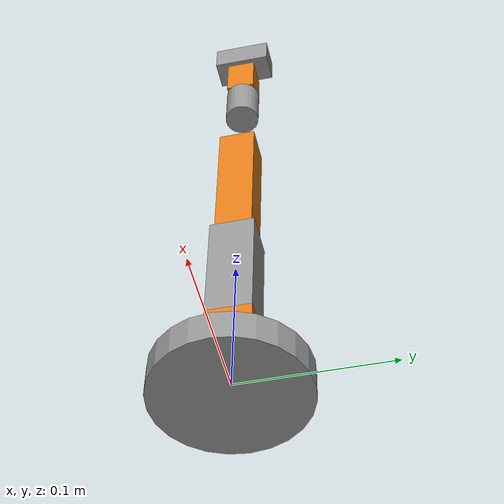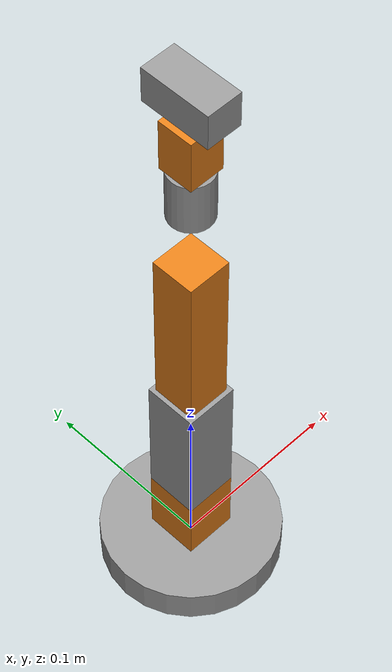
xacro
<?xml version="1.0"?>
<robot name="six_axis_arm" xmlns:xacro="http://www.ros.org/wiki/xacro">

  <material name="grey"><color rgba="0.6 0.6 0.6 1"/></material>
  <material name="orange"><color rgba="0.9 0.5 0.1 1"/></material>

  <link name="base_link">
    <visual>
      <geometry><cylinder radius="0.05" length="0.02"/></geometry>
      <material name="grey"/>
    </visual>
    <collision><geometry><cylinder radius="0.05" length="0.02"/></geometry></collision>
  </link>

  <!-- joint_1: base rotate (MG995, CH3) -->
  <joint name="joint_1" type="revolute">
    <parent link="base_link"/>
    <child link="link_1"/>
    <origin xyz="0 0 0.02" rpy="0 0 0"/>
    <axis xyz="0 0 1"/>
    <limit lower="-1.57" upper="1.57" effort="10" velocity="1.5"/>
  </joint>
  <link name="link_1">
    <visual><geometry><box size="0.03 0.03 0.06"/></geometry><material name="orange"/></visual>
    <collision><geometry><box size="0.03 0.03 0.06"/></geometry></collision>
  </link>

  <!-- joint_2: shoulder (MG995, CH4) -->
  <joint name="joint_2" type="revolute">
    <parent link="link_1"/>
    <child link="link_2"/>
    <origin xyz="0 0 0.06" rpy="0 0 0"/>
    <axis xyz="0 1 0"/>
    <limit lower="-1.57" upper="1.57" effort="10" velocity="1.5"/>
  </joint>
  <link name="link_2">
    <!-- TODO: replace 0.10 with your measured upper-arm length -->
    <visual><geometry><box size="0.03 0.03 0.10"/></geometry><material name="grey"/></visual>
    <collision><geometry><box size="0.03 0.03 0.10"/></geometry></collision>
  </link>

  <!-- joint_3: elbow (MG995, CH5) -->
  <joint name="joint_3" type="revolute">
    <parent link="link_2"/>
    <child link="link_3"/>
    <origin xyz="0 0 0.10" rpy="0 0 0"/>
    <axis xyz="0 1 0"/>
    <limit lower="-1.57" upper="1.57" effort="10" velocity="1.5"/>
  </joint>
  <link name="link_3">
    <!-- TODO: replace 0.10 with your measured forearm length -->
    <visual><geometry><box size="0.025 0.025 0.10"/></geometry><material name="orange"/></visual>
    <collision><geometry><box size="0.025 0.025 0.10"/></geometry></collision>
  </link>

  <!-- joint_4: wrist roll (SG90, CH0) -->
  <joint name="joint_4" type="revolute">
    <parent link="link_3"/>
    <child link="link_4"/>
    <origin xyz="0 0 0.10" rpy="0 0 0"/>
    <axis xyz="0 0 1"/>
    <limit lower="-1.57" upper="1.57" effort="2" velocity="2.0"/>
  </joint>
  <link name="link_4">
    <visual><geometry><cylinder radius="0.012" length="0.03"/></geometry><material name="grey"/></visual>
    <collision><geometry><cylinder radius="0.012" length="0.03"/></geometry></collision>
  </link>

  <!-- joint_5: wrist pitch (SG90, CH1) -->
  <joint name="joint_5" type="revolute">
    <parent link="link_4"/>
    <child link="link_5"/>
    <origin xyz="0 0 0.03" rpy="0 0 0"/>
    <axis xyz="0 1 0"/>
    <limit lower="-1.2" upper="1.2" effort="2" velocity="2.0"/>
  </joint>
  <link name="link_5">
    <visual><geometry><box size="0.02 0.02 0.03"/></geometry><material name="orange"/></visual>
    <collision><geometry><box size="0.02 0.02 0.03"/></geometry></collision>
  </link>

  <!-- joint_6: gripper / wrist yaw (SG90, CH2) -->
  <joint name="joint_6" type="revolute">
    <parent link="link_5"/>
    <child link="link_6"/>
    <origin xyz="0 0 0.03" rpy="0 0 0"/>
    <axis xyz="1 0 0"/>
    <limit lower="0" upper="1.2" effort="2" velocity="2.0"/>
  </joint>
  <link name="link_6">
    <visual><geometry><box size="0.02 0.04 0.02"/></geometry><material name="grey"/></visual>
    <collision><geometry><box size="0.02 0.04 0.02"/></geometry></collision>
  </link>

</robot>
